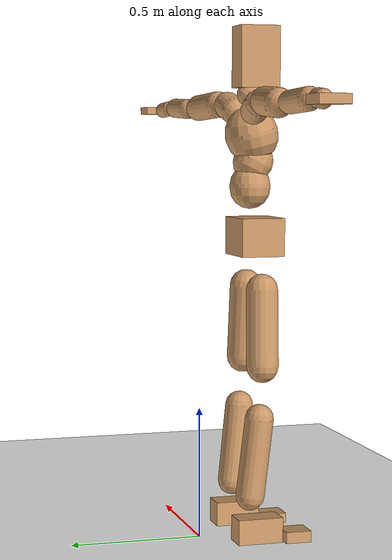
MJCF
<mujoco model="humanoid">
  <option integrator="implicitfast" />

  <visual>
    <global offwidth="1280" offheight="960" />
    <headlight active="1" ambient="0.34 0.34 0.34" diffuse="0.5 0.5 0.5" />
  </visual>

  <default>
    <joint damping="2" stiffness="2" armature="0.01" limited="true" solimplimit="0 .99 .01" />
    <geom condim="1" friction="0.7 0.005 0.0001" solimp=".99 .99 .003" solref="0.015 1" margin="0.001" rgba="0.8 0.6 .4 1" />
    <default class="smplcontact">
      <geom condim="3" friction="1. 0.005 0.0001" solref="0.015 1" solimp="0.98 0.98 0.001" priority="1" />
    </default>
    <default class="stiff_medium">
      <joint stiffness="10" />
    </default>
    <default class="stiff_medium_higher">
      <joint stiffness="50" />
    </default>
    <default class="stiff_high">
      <joint stiffness="100" />
    </default>
  </default>

  <asset>
    <texture type="skybox" builtin="gradient" rgb1="0.99 0.99 0.99" rgb2="0.608 0.828 0.892" width="100" />
    <texture builtin="flat" height="1278" mark="cross" markrgb="1 1 1" name="texgeom" random="0.01" rgb1="0.8 0.6 0.4" rgb2="0.8 0.6 0.4" type="cube" width="127" />
    <texture name="texplane" type="2d" builtin="checker" markrgb="1 1 1" rgb1="0.756 0.772 0.76" rgb2="0.6 0.6 0.6" width="100" height="100" />
    <material name="MatPlane" reflectance="0.5" texture="texplane" texrepeat="1 1" texuniform="true" />
    <material name="geom" texture="texgeom" texuniform="true" />
  </asset>

  <worldbody>
    <light name="tracking_light" pos="0 0 7" dir="0 0 -1" directional="true" cutoff="100" exponent="1" diffuse="1 1 1" specular="0.1 0.1 0.1" mode="trackcom" />
    <camera name="back" pos="0 3 2.4" xyaxes="-1 0 0 0 -1 2" mode="trackcom" />
    <camera name="side" pos="-3 0 2.4" xyaxes="0 -1 0 1 0 2" mode="trackcom" />
    <camera name="front_side" pos="-2.8 -2.8 0.8" xyaxes="0.5 -0.5 0 0.1 0.1 1" mode="trackcom" />
    <geom condim="3" name="floor" pos="0 0 0" rgba="1 1 1 1" size="100 100 .2" type="plane" material="MatPlane" />
    <body name="Pelvis" pos="-0.0018 -0.2233 1.16548" euler="90 0 0">
      <site name="Pelvis" size="0.01" />
      <freejoint name="Pelvis" />
      <geom type="box" pos="-0.0000 -0.0121 -0.0055" size="0.1069 0.0722 0.083" quat="1.0000 0.0000 0.0000 0.0000" density="3165.830099" name="Pelvis" />
      <body name="L_Hip" pos="0.086875 -0.11425 -0.0085">
        <joint name="L_Hip_x" type="hinge" pos="0 0 0" axis="1 0 0" stiffness="14.589841836734694" range="-160.0 22.92" class="stiff_medium" damping="24.10689143795971" armature="0.017703099984976"/>
        <joint name="L_Hip_y" type="hinge" pos="0 0 0" axis="0 1 0" stiffness="14.527612551020406" range="-70.0 70.0" class="stiff_medium" damping="14.262213477061746" armature="0.01400166287137072"/>
        <joint name="L_Hip_z" type="hinge" pos="0 0 0" axis="0 0 1" stiffness="14.532940204081633" range="-28.65 90.0" class="stiff_medium" damping="16.042326803653772" armature="0.01770847782081624"/>
        <geom type="capsule" density="2040.816327" fromto="0.008625 -0.09375 -0.001125 0.03425 -0.37525 -0.0045" size="0.0615" name="L_Hip" />
        <body name="L_Knee" pos="0.042875 -0.469 -0.005625">
          <joint name="L_Knee_x" type="hinge" pos="0 0 0" axis="1 0 0" range="-5.16 171.89" damping="12.427866473289077" armature="0.01695568739341872" stiffness="2.8466087346938775"/>
          <joint name="L_Knee_y" type="hinge" pos="0 0 0" axis="0 1 0" range="-4.58 6.88" damping="11.13194859971676" armature="0.013404538190087162" stiffness="2.888953489795919"/>
          <joint name="L_Knee_z" type="hinge" pos="0 0 0" axis="0 0 1" range="-6.88 4.58" damping="12.3960323573142" armature="0.01698035549968795" stiffness="2.8279299387755104"/>
          <geom type="capsule" density="1234.567901" fromto="-0.003375 -0.0995 -0.010875 -0.013625 -0.398 -0.04375" size="0.0541" name="L_Knee" />
          <body name="L_Ankle" pos="-0.017 -0.4975 -0.054625">
            <joint name="L_Ankle_x" type="hinge" pos="0 0 0" axis="1 0 0" range="-45.84 45.84" class="stiff_medium" damping="7.851672460897958" armature="0.013699724540716312" stiffness="12.5"/>
            <joint name="L_Ankle_y" type="hinge" pos="0 0 0" axis="0 1 0" range="-74.48 22.92" class="stiff_medium" damping="3.90606547180543" armature="0.01356208664002718" stiffness="12.5"/>
            <joint name="L_Ankle_z" type="hinge" pos="0 0 0" axis="0 0 1" range="-4.58 4.58" class="stiff_medium" damping="7.5481535386493945" armature="0.012661027076227863" stiffness="12.5"/>
            <geom type="box" pos="0.029125 -0.029875 0.03025" size="0.0483 0.0464 0.085" quat="1.0000 0.0000 0.0000 0.0000" density="449.071558" name="L_Ankle" class="smplcontact" />
            <body name="L_Toe" pos="0.033 -0.06975 0.149125">
              <joint name="L_Toe_x" type="hinge" pos="0 0 0" axis="1 0 0" range="-91.67 22.92" armature="0.01213855700177954" damping="2.4635905708720696" stiffness="2.5"/>
              <joint name="L_Toe_y" type="hinge" pos="0 0 0" axis="0 1 0" range="-4.58 4.58" armature="0.01150678605468802" damping="2.3986231524239083" stiffness="2.5"/>
              <joint name="L_Toe_z" type="hinge" pos="0 0 0" axis="0 0 1" range="-4.58 4.58" armature="0.010229379204576998" damping="2.261567952171347" stiffness="2.5"/>
              <geom type="box" pos="-0.00375 0.006875 0.031" size="0.0478 0.02 0.0496" quat="1.0000 0.0000 0.0000 0.0000" density="423.206892" name="L_Toe" class="smplcontact" />
            </body>
          </body>
        </body>
      </body>
      <body name="R_Hip" pos="-0.084625 -0.113125 -0.005375">
        <joint name="R_Hip_x" type="hinge" pos="0 0 0" axis="1 0 0" stiffness="14.589841836734694" range="-160.0 22.92" class="stiff_medium" damping="24.10689143795971" armature="0.017703099984976"/>
        <joint name="R_Hip_y" type="hinge" pos="0 0 0" axis="0 1 0" stiffness="14.527612551020406" range="-70.0 70.0" class="stiff_medium" damping="14.262213477061746" armature="0.01400166287137072"/>
        <joint name="R_Hip_z" type="hinge" pos="0 0 0" axis="0 0 1" stiffness="14.532940204081633" range="-90.0 28.65" class="stiff_medium" damping="16.042326803653772" armature="0.01770847782081624"/>
        <geom type="capsule" density="2040.816327" fromto="-0.009625 -0.095625 -0.00225 -0.03825 -0.382625 -0.008875" size="0.0606" name="R_Hip" />
        <body name="R_Knee" pos="-0.047875 -0.47825 -0.011125">
          <joint name="R_Knee_x" type="hinge" pos="0 0 0" axis="1 0 0" range="-5.16 171.89" damping="12.427866473289077" armature="0.01695568739341872" stiffness="2.8466087346938775"/>
          <joint name="R_Knee_y" type="hinge" pos="0 0 0" axis="0 1 0" range="-6.88 4.58" damping="11.13194859971676" armature="0.013404538190087162" stiffness="2.888953489795919"/>
          <joint name="R_Knee_z" type="hinge" pos="0 0 0" axis="0 0 1" range="-4.58 6.88" damping="12.3960323573142" armature="0.01698035549968795" stiffness="2.8279299387755104"/>
          <geom type="capsule" density="1234.567901" fromto="0.004 -0.099625 -0.010625 0.01575 -0.398375 -0.04225" size="0.0541" name="R_Knee" />
          <body name="R_Ankle" pos="0.01975 -0.498 -0.052875">
            <joint name="R_Ankle_x" type="hinge" pos="0 0 0" axis="1 0 0" range="-45.84 45.84" class="stiff_medium" damping="7.851672460897958" armature="0.013699724540716312" stiffness="12.5"/>
            <joint name="R_Ankle_y" type="hinge" pos="0 0 0" axis="0 1 0" range="-22.92 74.48" class="stiff_medium" damping="3.90606547180543" armature="0.01356208664002718" stiffness="12.5"/>
            <joint name="R_Ankle_z" type="hinge" pos="0 0 0" axis="0 0 1" range="-4.58 4.58" class="stiff_medium" damping="7.5481535386493945" armature="0.012661027076227863" stiffness="12.5"/>
            <geom type="box" pos="-0.0265 -0.02175 0.032" size="0.0483 0.0478 0.0865" quat="1.0000 0.0000 0.0000 0.0000" density="434.700981" name="R_Ankle" class="smplcontact" />
            <body name="R_Toe" pos="-0.03175 -0.060125 0.154125">
              <joint name="R_Toe_x" type="hinge" pos="0 0 0" axis="1 0 0" range="-91.67 22.92" armature="0.01213855700177954" damping="2.4635905708720696" stiffness="2.5"/>
              <joint name="R_Toe_y" type="hinge" pos="0 0 0" axis="0 1 0" range="-4.58 4.58" armature="0.01150678605468802" damping="2.3986231524239083" stiffness="2.5"/>
              <joint name="R_Toe_z" type="hinge" pos="0 0 0" axis="0 0 1" range="-4.58 4.58" armature="0.010229379204576998" damping="2.261567952171347" stiffness="2.5"/>
              <geom type="box" pos="0.00525 0.005625 0.028375" size="0.0479 0.0216 0.0493" quat="1.0000 0.0000 0.0000 0.0000" density="407.384095" name="R_Toe" class="smplcontact" />
            </body>
          </body>
        </body>
      </body>
      <body name="Torso" pos="-0.0025 0.109 -0.0267">
        <joint name="Torso_x" type="hinge" pos="0 0 0" axis="1 0 0" range="-25.78 57.3" class="stiff_medium" damping="16.94478917737132" armature="0.011576079564418827" stiffness="11.023723673469387"/>
        <joint name="Torso_y" type="hinge" pos="0 0 0" axis="0 1 0" range="-57.3 57.3" class="stiff_high" damping="29.115087567135376" armature="0.01937626790595332" stiffness="109.37198124999998"/>
        <joint name="Torso_z" type="hinge" pos="0 0 0" axis="0 0 1" range="-34.38 34.38" class="stiff_high" damping="24.64077151532871" armature="0.014228244849331766" stiffness="106.68350652173912"/>
        <geom type="capsule" density="2040.816327" fromto="0.0025 0.0608 0.0005 0.003 0.0743 0.0006" size="0.0769" name="Torso" />
        <body name="Spine" pos="0.0055 0.1352 0.0011">
          <joint name="Spine_x" type="hinge" pos="0 0 0" axis="1 0 0" stiffness="11.23382224489796" range="-25.78 57.3" class="stiff_medium" damping="17.41106230963078" armature="0.011993349058515351"/>
          <joint name="Spine_y" type="hinge" pos="0 0 0" axis="0 1 0" stiffness="11.67224088888889" range="-57.3 57.3" class="stiff_high" damping="12.051053820080998" armature="0.019440876268553408"/>
          <joint name="Spine_z" type="hinge" pos="0 0 0" axis="0 0 1" stiffness="22.9563125" range="-34.38 34.38" class="stiff_high" damping="16.317554444807215" armature="0.016109257231005366"/>
          <geom type="capsule" density="2040.816327" fromto="0.0007 0.0238 0.0114 0.0008 0.0291 0.014" size="0.0755" name="Spine" />
          <body name="Chest" pos="0.0015 0.0529 0.0254">
            <joint name="Chest_x" type="hinge" pos="0 0 0" axis="1 0 0" stiffness="11.776115531914895" range="-25.78 57.3" class="stiff_medium" damping="18.021102303759758" armature="0.012256829035287782"/>
            <joint name="Chest_y" type="hinge" pos="0 0 0" axis="0 1 0" stiffness="13.448267333333334" range="-57.3 57.3" class="stiff_high" damping="12.937740431789006" armature="0.01944780358729065"/>
            <joint name="Chest_z" type="hinge" pos="0 0 0" axis="0 0 1" stiffness="23.267014782608697" range="-34.38 34.38" class="stiff_high" damping="16.84752883262496" armature="0.01694334891512797"/>
            <geom type="capsule" density="2040.816327" fromto="-0.0009 0.0682 -0.0173 -0.001 0.0833 -0.0212" size="0.1002" name="Chest" />
            <body name="Neck" pos="-0.0028 0.2139 -0.0429">
              <joint name="Neck_x" type="hinge" pos="0 0 0" axis="1 0 0" range="-28.65 57.3" class="stiff_medium_higher" damping="9.999999999999996" armature="0.009999999999999993" stiffness="50.0"/>
              <joint name="Neck_y" type="hinge" pos="0 0 0" axis="0 1 0" range="-40.11 40.11" class="stiff_medium_higher" damping="10.0" armature="0.01" stiffness="50.0"/>
              <joint name="Neck_z" type="hinge" pos="0 0 0" axis="0 0 1" range="-40.11 40.11" class="stiff_medium_higher" damping="9.999999999999995" armature="0.00999999999999999" stiffness="50.0"/>
              <geom type="capsule" density="1000" fromto="0.001 0.013 0.0103 0.0041 0.052 0.0411" size="0.0436" name="Neck" />
              <body name="Head" pos="0.0052 0.065 0.0513">
                <joint name="Head_x" type="hinge" pos="0 0 0" axis="1 0 0" range="-28.65 57.3" class="stiff_medium_higher" damping="1.9999999999999973" armature="0.009999999999999974" stiffness="50.0"/>
                <joint name="Head_y" type="hinge" pos="0 0 0" axis="0 1 0" range="-40.11 40.11" class="stiff_medium_higher" damping="1.9999999999999998" armature="0.009999999999999998" stiffness="50.0"/>
                <joint name="Head_z" type="hinge" pos="0 0 0" axis="0 0 1" range="-40.11 40.11" class="stiff_medium_higher" damping="1.999999999999994" armature="0.00999999999999994" stiffness="50.0"/>
                <geom type="box" pos="-0.0042 0.0876 -0.0116" size="0.0606 0.1154 0.076" quat="1.0000 0.0000 0.0000 0.0000" density="1018.069894" name="Head" />
                <geom type="capsule" name="nose" size="0.02 0.01" pos="0 0.07 0.05" quat="1 0 0 0" mass="0" contype="0" conaffinity="0" />
              </body>
            </body>
            <body name="L_Thorax" pos="0.10244 0.15821 -0.04433">
              <joint name="L_Thorax_x" type="hinge" pos="0 0 0" axis="1 0 0" range="-10.89 4.58" class="stiff_medium_higher" damping="31.58973579795799" armature="0.016223873504270445" stiffness="76.88603214285715"/>
              <joint name="L_Thorax_y" type="hinge" pos="0 0 0" axis="0 1 0" range="-28.65 17.19" class="stiff_medium_higher" damping="34.89989559971406" armature="0.01967496307175568" stiffness="77.38278265306123"/>
              <joint name="L_Thorax_z" type="hinge" pos="0 0 0" axis="0 0 1" range="-31.51 40.11" class="stiff_medium_higher" damping="34.901462278801546" armature="0.019678125977203684" stiffness="77.37729132653061"/>
              <geom type="capsule" density="1000" fromto="0.02366 0.00793 -0.00234 0.09464 0.03172 -0.00923" size="0.0521" name="L_Thorax" />
              <body name="L_Shoulder" pos="0.1183 0.03965 -0.01157">
                <joint name="L_Shoulder_x" type="hinge" pos="0 0 0" axis="1 0 0" range="-97.4 97.4" class="stiff_medium" damping="9.029989056678968" armature="0.014800063709013931" stiffness="15.304120000000001"/>
                <joint name="L_Shoulder_y" type="hinge" pos="0 0 0" axis="0 1 0" range="-108.86 80.21" class="stiff_medium" damping="10.416659800941959" armature="0.019521721968520908" stiffness="15.439610408163267"/>
                <joint name="L_Shoulder_z" type="hinge" pos="0 0 0" axis="0 0 1" range="-97.4 85.94" class="stiff_medium" damping="10.414978319288075" armature="0.019525527681653103" stiffness="15.431617857142857"/>
                <geom type="capsule" density="1000" fromto="0.06747 -0.00338 -0.00715 0.27001 -0.01326 -0.0286" size="0.0517" name="L_Shoulder" />
                <body name="L_Elbow" pos="0.33748 -0.01664 -0.03575">
                  <joint name="L_Elbow_x" type="hinge" pos="0 0 0" axis="1 0 0" range="-17.19 4.58" damping="6.893935965131491" armature="0.012655354053031607" stiffness="3.0043475918367353"/>
                  <joint name="L_Elbow_y" type="hinge" pos="0 0 0" axis="0 1 0" range="-180.0 17.19" damping="8.400044856786575" armature="0.0187809014242655" stiffness="3.005638632653061"/>
                  <joint name="L_Elbow_z" type="hinge" pos="0 0 0" axis="0 0 1" range="-100.84 4.58" damping="8.401427491655667" armature="0.018800821954664846" stiffness="3.003442469387755"/>
                  <geom type="capsule" density="1000" fromto="0.06474 0.00234 -0.00026 0.25922 0.00936 -0.00117" size="0.0405" name="L_Elbow" />
                  <body name="L_Wrist" pos="0.32396 0.0117 -0.00156">
                    <joint name="L_Wrist_x" type="hinge" pos="0 0 0" axis="1 0 0" range="-180.0 22.92" armature="0.012290327941728197" damping="2.595783394027916" stiffness="2.7412171020408165"/>
                    <joint name="L_Wrist_y" type="hinge" pos="0 0 0" axis="0 1 0" range="-17.19 17.19" armature="0.01653060809261125" damping="3.021806412761206" stiffness="2.7619413469387752"/>
                    <joint name="L_Wrist_z" type="hinge" pos="0 0 0" axis="0 0 1" range="-22.92 22.92" armature="0.016761001490565784" damping="3.0381836187287616" stiffness="2.7535823877551024"/>
                    <geom type="capsule" density="1000" fromto="0.02184 -0.00208 -0.0039 0.08736 -0.00845 -0.0156" size="0.0318" name="L_Wrist" class="smplcontact" />
                    <body name="L_Hand" pos="0.1092 -0.01066 -0.01937">
                      <joint name="L_Hand_x" type="hinge" pos="0 0 0" axis="1 0 0" range="-17.19 17.19" armature="0.01030060650759153" damping="2.3143714878877146" stiffness="2.5999999999999996"/>
                      <joint name="L_Hand_y" type="hinge" pos="0 0 0" axis="0 1 0" range="-51.57 51.57" armature="0.01363542097808933" damping="2.6627840521917" stiffness="2.5999999999999996"/>
                      <joint name="L_Hand_z" type="hinge" pos="0 0 0" axis="0 0 1" range="-91.67 91.67" armature="0.014524361339041461" damping="2.7482117633656906" stiffness="2.5999999999999996"/>
                      <geom type="box" pos="0.06409 0.0013 -0.00754" size="0.0585 0.0158 0.0538" quat="1.0000 0.0000 0.0000 0.0000" density="400.552564" name="L_Hand" class="smplcontact" />
                    </body>
                  </body>
                </body>
              </body>
            </body>
            <body name="R_Thorax" pos="-0.10634 0.15444 -0.05018">
              <joint name="R_Thorax_x" type="hinge" pos="0 0 0" axis="1 0 0" range="-10.89 4.58" class="stiff_medium_higher" damping="31.58973579795799" armature="0.016223873504270445" stiffness="76.88603214285715"/>
              <joint name="R_Thorax_y" type="hinge" pos="0 0 0" axis="0 1 0" range="-17.19 28.65" class="stiff_medium_higher" damping="34.89989559971406" armature="0.01967496307175568" stiffness="77.38278265306123"/>
              <joint name="R_Thorax_z" type="hinge" pos="0 0 0" axis="0 0 1" range="-40.11 31.51" class="stiff_medium_higher" damping="34.901462278801546" armature="0.019678125977203684" stiffness="77.37729132653061"/>
              <geom type="capsule" density="1000" fromto="-0.02496 0.00845 -0.00234 -0.09984 0.0338 -0.00949" size="0.0511" name="R_Thorax" />
              <body name="R_Shoulder" pos="-0.1248 0.04238 -0.01183">
                <joint name="R_Shoulder_x" type="hinge" pos="0 0 0" axis="1 0 0" range="-97.4 97.4" class="stiff_medium" damping="9.029989056678968" armature="0.014800063709013931" stiffness="15.304120000000001"/>
                <joint name="R_Shoulder_y" type="hinge" pos="0 0 0" axis="0 1 0" range="-80.21 108.86" class="stiff_medium" damping="10.416659800941959" armature="0.019521721968520908" stiffness="15.439610408163267"/>
                <joint name="R_Shoulder_z" type="hinge" pos="0 0 0" axis="0 0 1" range="-85.94 97.4" class="stiff_medium" damping="10.414978319288075" armature="0.019525527681653103" stiffness="15.431617857142857"/>
                <geom type="capsule" density="1000" fromto="-0.06591 -0.00351 -0.00559 -0.2639 -0.01391 -0.02223" size="0.0531" name="R_Shoulder" />
                <body name="R_Elbow" pos="-0.32981 -0.01729 -0.02782">
                  <joint name="R_Elbow_x" type="hinge" pos="0 0 0" axis="1 0 0" range="-17.19 4.58" damping="6.893935965131491" armature="0.012655354053031607" stiffness="3.0043475918367353"/>
                  <joint name="R_Elbow_y" type="hinge" pos="0 0 0" axis="0 1 0" range="-17.19 180.0" damping="8.400044856786575" armature="0.0187809014242655" stiffness="3.005638632653061"/>
                  <joint name="R_Elbow_z" type="hinge" pos="0 0 0" axis="0 0 1" range="-4.58 100.84" damping="8.401427491655667" armature="0.018800821954664846" stiffness="3.003442469387755"/>
                  <geom type="capsule" density="1000" fromto="-0.06643 0.00208 -0.00143 -0.26546 0.00806 -0.00572" size="0.0408" name="R_Elbow" />
                  <body name="R_Wrist" pos="-0.33189 0.01014 -0.00728">
                    <joint name="R_Wrist_x" type="hinge" pos="0 0 0" axis="1 0 0" range="-180.0 22.92" armature="0.012290327941728197" damping="2.595783394027916" stiffness="2.7412171020408165"/>
                    <joint name="R_Wrist_y" type="hinge" pos="0 0 0" axis="0 1 0" range="-17.19 17.19" armature="0.01653060809261125" damping="3.021806412761206" stiffness="2.7619413469387752"/>
                    <joint name="R_Wrist_z" type="hinge" pos="0 0 0" axis="0 0 1" range="-22.92 22.92" armature="0.016761001490565784" damping="3.0381836187287616" stiffness="2.7535823877551024"/>
                    <geom type="capsule" density="1000" fromto="-0.02197 -0.00156 -0.00273 -0.08801 -0.00637 -0.01079" size="0.0326" name="R_Wrist" class="smplcontact" />
                    <body name="R_Hand" pos="-0.10998 -0.00793 -0.01339">
                      <joint name="R_Hand_x" type="hinge" pos="0 0 0" axis="1 0 0" range="-17.19 17.19" armature="0.01030060650759153" damping="2.3143714878877146" stiffness="2.5999999999999996"/>
                      <joint name="R_Hand_y" type="hinge" pos="0 0 0" axis="0 1 0" range="-51.57 51.57" armature="0.01363542097808933" damping="2.6627840521917" stiffness="2.5999999999999996"/>
                      <joint name="R_Hand_z" type="hinge" pos="0 0 0" axis="0 0 1" range="-91.67 91.67" armature="0.014524361339041461" damping="2.7482117633656906" stiffness="2.5999999999999996"/>
                      <geom type="box" pos="-0.06006 -0.00117 -0.01027" size="0.0569 0.0164 0.0546" quat="1.0000 0.0000 0.0000 0.0000" density="403.679611" name="R_Hand" class="smplcontact" />
                    </body>
                  </body>
                </body>
              </body>
            </body>
          </body>
        </body>
      </body>
    </body>
  </worldbody>
  <actuator>
    <general name="L_Hip_x" joint="L_Hip_x" biastype="affine" gainprm="419.21001901187765" biasprm="-314.15541988928595 -262.6171530612245 -3.2142521917279616" ctrllimited="true" ctrlrange="-1 1" forcerange="-525.234306122449 525.234306122449" />
    <general name="L_Hip_y" joint="L_Hip_y" biastype="affine" gainprm="319.47888605139207" biasprm="0.0 -261.4970259183673 -2.852442695412349" ctrllimited="true" ctrlrange="-1 1" forcerange="-522.9940518367346 522.9940518367346" />
    <general name="L_Hip_z" joint="L_Hip_z" biastype="affine" gainprm="270.857650054052" biasprm="140.0515535677715 -261.5929236734694 -3.2084653607307545" ctrllimited="true" ctrlrange="-1 1" forcerange="-523.1858473469388 523.1858473469388" />
    <general name="L_Knee_x" joint="L_Knee_x" biastype="affine" gainprm="395.8344512323349" biasprm="372.7618077038531 -256.194786122449 -3.1069666183222693" ctrllimited="true" ctrlrange="-1 1" forcerange="-512.389572244898 512.389572244898" />
    <general name="L_Knee_y" joint="L_Knee_y" biastype="affine" gainprm="26.002496647202126" biasprm="5.218651159560636 -260.0058140816327 -2.78298714992919" ctrllimited="true" ctrlrange="-1 1" forcerange="-520.0116281632654 520.0116281632654" />
    <general name="L_Knee_z" joint="L_Knee_z" biastype="affine" gainprm="25.45324423230062" biasprm="-5.108417254301171 -254.51369448979594 -3.09900808932855" ctrllimited="true" ctrlrange="-1 1" forcerange="-509.0273889795919 509.0273889795919" />
    <general name="L_Ankle_x" joint="L_Ankle_x" biastype="affine" gainprm="90.00662952534759" biasprm="0.0 -112.5 -2.6172241536326526" ctrllimited="true" ctrlrange="-1 1" forcerange="-225.0 225.0" />
    <general name="L_Ankle_y" joint="L_Ankle_y" biastype="affine" gainprm="95.62222639363935" biasprm="-50.61891163096555 -112.5 -2.6040436478702866" ctrllimited="true" ctrlrange="-1 1" forcerange="-225.0 225.0" />
    <general name="L_Ankle_z" joint="L_Ankle_z" biastype="affine" gainprm="8.992808970900782" biasprm="0.0 -112.5 -2.516051179549798" ctrllimited="true" ctrlrange="-1 1" forcerange="-225.0 225.0" />
    <general name="L_Toe_x" joint="L_Toe_x" biastype="affine" gainprm="89.99877554371359" biasprm="-53.996123733574564 -90.0 -0.9854362283488278" ctrllimited="true" ctrlrange="-1 1" forcerange="-180.0 180.0" />
    <general name="L_Toe_y" joint="L_Toe_y" biastype="affine" gainprm="7.194247176720626" biasprm="0.0 -90.0 -0.9594492609695634" ctrllimited="true" ctrlrange="-1 1" forcerange="-180.0 180.0" />
    <general name="L_Toe_z" joint="L_Toe_z" biastype="affine" gainprm="7.194247176720626" biasprm="0.0 -90.0 -0.9046271808685389" ctrllimited="true" ctrlrange="-1 1" forcerange="-180.0 180.0" />
    <general name="R_Hip_x" joint="R_Hip_x" biastype="affine" gainprm="419.21001901187765" biasprm="-314.15541988928595 -262.6171530612245 -3.2142521917279616" ctrllimited="true" ctrlrange="-1 1" forcerange="-525.234306122449 525.234306122449" />
    <general name="R_Hip_y" joint="R_Hip_y" biastype="affine" gainprm="319.47888605139207" biasprm="0.0 -261.4970259183673 -2.852442695412349" ctrllimited="true" ctrlrange="-1 1" forcerange="-522.9940518367346 522.9940518367346" />
    <general name="R_Hip_z" joint="R_Hip_z" biastype="affine" gainprm="270.857650054052" biasprm="-140.0515535677715 -261.5929236734694 -3.2084653607307545" ctrllimited="true" ctrlrange="-1 1" forcerange="-523.1858473469388 523.1858473469388" />
    <general name="R_Knee_x" joint="R_Knee_x" biastype="affine" gainprm="395.8344512323349" biasprm="372.7618077038531 -256.194786122449 -3.1069666183222693" ctrllimited="true" ctrlrange="-1 1" forcerange="-512.389572244898 512.389572244898" />
    <general name="R_Knee_y" joint="R_Knee_y" biastype="affine" gainprm="26.002496647202126" biasprm="-5.218651159560636 -260.0058140816327 -2.78298714992919" ctrllimited="true" ctrlrange="-1 1" forcerange="-520.0116281632654 520.0116281632654" />
    <general name="R_Knee_z" joint="R_Knee_z" biastype="affine" gainprm="25.45324423230062" biasprm="5.108417254301171 -254.51369448979594 -3.09900808932855" ctrllimited="true" ctrlrange="-1 1" forcerange="-509.0273889795919 509.0273889795919" />
    <general name="R_Ankle_x" joint="R_Ankle_x" biastype="affine" gainprm="90.00662952534759" biasprm="0.0 -112.5 -2.6172241536326526" ctrllimited="true" ctrlrange="-1 1" forcerange="-225.0 225.0" />
    <general name="R_Ankle_y" joint="R_Ankle_y" biastype="affine" gainprm="95.62222639363935" biasprm="50.61891163096555 -112.5 -2.6040436478702866" ctrllimited="true" ctrlrange="-1 1" forcerange="-225.0 225.0" />
    <general name="R_Ankle_z" joint="R_Ankle_z" biastype="affine" gainprm="8.992808970900782" biasprm="0.0 -112.5 -2.516051179549798" ctrllimited="true" ctrlrange="-1 1" forcerange="-225.0 225.0" />
    <general name="R_Toe_x" joint="R_Toe_x" biastype="affine" gainprm="89.99877554371359" biasprm="-53.996123733574564 -90.0 -0.9854362283488278" ctrllimited="true" ctrlrange="-1 1" forcerange="-180.0 180.0" />
    <general name="R_Toe_y" joint="R_Toe_y" biastype="affine" gainprm="7.194247176720626" biasprm="0.0 -90.0 -0.9594492609695634" ctrllimited="true" ctrlrange="-1 1" forcerange="-180.0 180.0" />
    <general name="R_Toe_z" joint="R_Toe_z" biastype="affine" gainprm="7.194247176720626" biasprm="0.0 -90.0 -0.9046271808685389" ctrllimited="true" ctrlrange="-1 1" forcerange="-180.0 180.0" />
    <general name="Torso_x" joint="Torso_x" biastype="affine" gainprm="191.81537709933156" biasprm="72.77347961207185 -264.5693681632653 -4.518610447299019" ctrllimited="true" ctrlrange="-1 1" forcerange="-396.85405224489796 396.85405224489796" />
    <general name="Torso_y" joint="Torso_y" biastype="affine" gainprm="262.51209058192023" biasprm="0.0 -262.492755 -5.823017513427075" ctrllimited="true" ctrlrange="-1 1" forcerange="-393.7391324999999 393.7391324999999" />
    <general name="Torso_z" joint="Torso_z" biastype="affine" gainprm="153.63556556747483" biasprm="0.0 -256.0404156521739 -4.9281543030657415" ctrllimited="true" ctrlrange="-1 1" forcerange="-384.0606234782608 384.0606234782608" />
    <general name="Spine_x" joint="Spine_x" biastype="affine" gainprm="195.47114151254812" biasprm="74.16045234082229 -269.61173387755105 -4.6429499492348745" ctrllimited="true" ctrlrange="-1 1" forcerange="-404.41760081632657 404.41760081632657" />
    <general name="Spine_y" joint="Spine_y" biastype="affine" gainprm="280.1544163778229" biasprm="0.0 -280.13378133333333 -6.025526910040499" ctrllimited="true" ctrlrange="-1 1" forcerange="-420.200672 420.200672" />
    <general name="Spine_z" joint="Spine_z" biastype="affine" gainprm="165.29762515644848" biasprm="0.0 -275.47575 -5.439184814935738" ctrllimited="true" ctrlrange="-1 1" forcerange="-413.213625 413.213625" />
    <general name="Chest_x" joint="Chest_x" biastype="affine" gainprm="204.90717188021173" biasprm="77.74041956745634 -282.62677276595747 -4.805627281002602" ctrllimited="true" ctrlrange="-1 1" forcerange="-423.94015914893623 423.94015914893623" />
    <general name="Chest_y" joint="Chest_y" biastype="affine" gainprm="322.78219083444463" biasprm="0.0 -322.758416 -6.468870215894503" ctrllimited="true" ctrlrange="-1 1" forcerange="-484.1376240000001 484.1376240000001" />
    <general name="Chest_z" joint="Chest_z" biastype="affine" gainprm="167.53484637592376" biasprm="0.0 -279.20417739130437 -5.615842944208319" ctrllimited="true" ctrlrange="-1 1" forcerange="-418.8062660869566 418.8062660869566" />
    <general name="Neck_x" joint="Neck_x" biastype="affine" gainprm="27.00198885760427" biasprm="9.000662952534757 -36.0 -0.7999999999999997" ctrllimited="true" ctrlrange="-1 1" forcerange="-72.0 72.0" />
    <general name="Neck_y" joint="Neck_y" biastype="affine" gainprm="25.20185626709732" biasprm="0.0 -36.0 -0.8" ctrllimited="true" ctrlrange="-1 1" forcerange="-72.0 72.0" />
    <general name="Neck_z" joint="Neck_z" biastype="affine" gainprm="25.20185626709732" biasprm="0.0 -36.0 -0.7999999999999996" ctrllimited="true" ctrlrange="-1 1" forcerange="-72.0 72.0" />
    <general name="Head_x" joint="Head_x" biastype="affine" gainprm="18.001325905069514" biasprm="6.000441968356505 -24.0 -0.7999999999999989" ctrllimited="true" ctrlrange="-1 1" forcerange="-48.0 48.0" />
    <general name="Head_y" joint="Head_y" biastype="affine" gainprm="16.801237511398213" biasprm="0.0 -24.0 -0.7999999999999999" ctrllimited="true" ctrlrange="-1 1" forcerange="-48.0 48.0" />
    <general name="Head_z" joint="Head_z" biastype="affine" gainprm="16.801237511398213" biasprm="0.0 -24.0 -0.7999999999999976" ctrllimited="true" ctrlrange="-1 1" forcerange="-48.0 48.0" />
    <general name="L_Thorax_x" joint="L_Thorax_x" biastype="affine" gainprm="24.911299101430362" biasprm="-10.160975910150333 -184.52647714285715 -2.5271788638366393" ctrllimited="true" ctrlrange="-1 1" forcerange="-369.0529542857143 369.0529542857143" />
    <general name="L_Thorax_y" joint="L_Thorax_y" biastype="affine" gainprm="74.29294346554212" biasprm="-18.57323586638553 -185.71867836734694 -2.7919916479771247" ctrllimited="true" ctrlrange="-1 1" forcerange="-371.4373567346939 371.4373567346939" />
    <general name="L_Thorax_z" joint="L_Thorax_z" biastype="affine" gainprm="116.06638363736599" biasprm="13.937041319203399 -185.70549918367348 -2.7921169823041243" ctrllimited="true" ctrlrange="-1 1" forcerange="-371.41099836734696 371.41099836734696" />
    <general name="L_Shoulder_x" joint="L_Shoulder_x" biastype="affine" gainprm="124.8779970044095" biasprm="0.0 -73.459776 -2.4079970817810583" ctrllimited="true" ctrlrange="-1 1" forcerange="-146.919552 146.919552" />
    <general name="L_Shoulder_y" joint="L_Shoulder_y" biastype="affine" gainprm="122.27778721627745" biasprm="-18.528897253643354 -74.11012995918368 -2.7777759469178562" ctrllimited="true" ctrlrange="-1 1" forcerange="-148.22025991836736 148.22025991836736" />
    <general name="L_Shoulder_z" joint="L_Shoulder_z" biastype="affine" gainprm="118.51062714799397" biasprm="-7.40772219437119 -74.0717657142857 -2.7773275518101537" ctrllimited="true" ctrlrange="-1 1" forcerange="-148.1435314285714 148.1435314285714" />
    <general name="L_Elbow_x" joint="L_Elbow_x" biastype="affine" gainprm="20.54747587592092" biasprm="-11.901868203737386 -108.15651330612246 -1.1030297544210386" ctrllimited="true" ctrlrange="-1 1" forcerange="-216.31302661224493 216.31302661224493" />
    <general name="L_Elbow_y" joint="L_Elbow_y" biastype="affine" gainprm="186.19650463217005" biasprm="-153.73321628461693 -108.20299077551019 -1.3440071770858522" ctrllimited="true" ctrlrange="-1 1" forcerange="-216.40598155102037 216.40598155102037" />
    <general name="L_Elbow_z" joint="L_Elbow_z" biastype="affine" gainprm="99.4700192692226" biasprm="-90.82701626688834 -108.12392889795919 -1.3442283986649066" ctrllimited="true" ctrlrange="-1 1" forcerange="-216.24785779591838 216.24785779591838" />
    <general name="L_Wrist_x" joint="L_Wrist_x" biastype="affine" gainprm="29.125065357690858" biasprm="-22.545659700305933 -16.447302612244897 -1.0383133576111665" ctrllimited="true" ctrlrange="-1 1" forcerange="-32.894605224489794 32.894605224489794" />
    <general name="L_Wrist_y" joint="L_Wrist_y" biastype="affine" gainprm="4.971860631693158" biasprm="0.0 -16.571648081632652 -1.2087225651044824" ctrllimited="true" ctrlrange="-1 1" forcerange="-33.143296163265305 33.143296163265305" />
    <general name="L_Wrist_z" joint="L_Wrist_z" biastype="affine" gainprm="6.609084529125214" biasprm="0.0 -16.521494326530615 -1.2152734474915048" ctrllimited="true" ctrlrange="-1 1" forcerange="-33.04298865306123 33.04298865306123" />
    <general name="L_Hand_x" joint="L_Hand_x" biastype="affine" gainprm="4.680344735318074" biasprm="0.0 -15.599999999999998 -0.9257485951550859" ctrllimited="true" ctrlrange="-1 1" forcerange="-31.199999999999996 31.199999999999996" />
    <general name="L_Hand_y" joint="L_Hand_y" biastype="affine" gainprm="14.041034205954219" biasprm="0.0 -15.599999999999998 -1.06511362087668" ctrllimited="true" ctrlrange="-1 1" forcerange="-31.199999999999996 31.199999999999996" />
    <general name="L_Hand_z" joint="L_Hand_z" biastype="affine" gainprm="24.959115874729946" biasprm="0.0 -15.599999999999998 -1.0992847053462762" ctrllimited="true" ctrlrange="-1 1" forcerange="-31.199999999999996 31.199999999999996" />
    <general name="R_Thorax_x" joint="R_Thorax_x" biastype="affine" gainprm="24.911299101430362" biasprm="-10.160975910150333 -184.52647714285715 -2.5271788638366393" ctrllimited="true" ctrlrange="-1 1" forcerange="-369.0529542857143 369.0529542857143" />
    <general name="R_Thorax_y" joint="R_Thorax_y" biastype="affine" gainprm="74.29294346554212" biasprm="18.57323586638552 -185.71867836734694 -2.7919916479771247" ctrllimited="true" ctrlrange="-1 1" forcerange="-371.4373567346939 371.4373567346939" />
    <general name="R_Thorax_z" joint="R_Thorax_z" biastype="affine" gainprm="116.06638363736599" biasprm="-13.937041319203399 -185.70549918367348 -2.7921169823041243" ctrllimited="true" ctrlrange="-1 1" forcerange="-371.41099836734696 371.41099836734696" />
    <general name="R_Shoulder_x" joint="R_Shoulder_x" biastype="affine" gainprm="124.8779970044095" biasprm="0.0 -73.459776 -2.4079970817810583" ctrllimited="true" ctrlrange="-1 1" forcerange="-146.919552 146.919552" />
    <general name="R_Shoulder_y" joint="R_Shoulder_y" biastype="affine" gainprm="122.27778721627745" biasprm="18.528897253643354 -74.11012995918368 -2.7777759469178562" ctrllimited="true" ctrlrange="-1 1" forcerange="-148.22025991836736 148.22025991836736" />
    <general name="R_Shoulder_z" joint="R_Shoulder_z" biastype="affine" gainprm="118.51062714799397" biasprm="7.407722194371173 -74.0717657142857 -2.7773275518101537" ctrllimited="true" ctrlrange="-1 1" forcerange="-148.1435314285714 148.1435314285714" />
    <general name="R_Elbow_x" joint="R_Elbow_x" biastype="affine" gainprm="20.54747587592092" biasprm="-11.901868203737386 -108.15651330612246 -1.1030297544210386" ctrllimited="true" ctrlrange="-1 1" forcerange="-216.31302661224493 216.31302661224493" />
    <general name="R_Elbow_y" joint="R_Elbow_y" biastype="affine" gainprm="186.19650463217005" biasprm="153.73321628461693 -108.20299077551019 -1.3440071770858522" ctrllimited="true" ctrlrange="-1 1" forcerange="-216.40598155102037 216.40598155102037" />
    <general name="R_Elbow_z" joint="R_Elbow_z" biastype="affine" gainprm="99.4700192692226" biasprm="90.82701626688832 -108.12392889795919 -1.3442283986649066" ctrllimited="true" ctrlrange="-1 1" forcerange="-216.24785779591838 216.24785779591838" />
    <general name="R_Wrist_x" joint="R_Wrist_x" biastype="affine" gainprm="29.125065357690858" biasprm="-22.545659700305933 -16.447302612244897 -1.0383133576111665" ctrllimited="true" ctrlrange="-1 1" forcerange="-32.894605224489794 32.894605224489794" />
    <general name="R_Wrist_y" joint="R_Wrist_y" biastype="affine" gainprm="4.971860631693158" biasprm="0.0 -16.571648081632652 -1.2087225651044824" ctrllimited="true" ctrlrange="-1 1" forcerange="-33.143296163265305 33.143296163265305" />
    <general name="R_Wrist_z" joint="R_Wrist_z" biastype="affine" gainprm="6.609084529125214" biasprm="0.0 -16.521494326530615 -1.2152734474915048" ctrllimited="true" ctrlrange="-1 1" forcerange="-33.04298865306123 33.04298865306123" />
    <general name="R_Hand_x" joint="R_Hand_x" biastype="affine" gainprm="4.680344735318074" biasprm="0.0 -15.599999999999998 -0.9257485951550859" ctrllimited="true" ctrlrange="-1 1" forcerange="-31.199999999999996 31.199999999999996" />
    <general name="R_Hand_y" joint="R_Hand_y" biastype="affine" gainprm="14.041034205954219" biasprm="0.0 -15.599999999999998 -1.06511362087668" ctrllimited="true" ctrlrange="-1 1" forcerange="-31.199999999999996 31.199999999999996" />
    <general name="R_Hand_z" joint="R_Hand_z" biastype="affine" gainprm="24.959115874729946" biasprm="0.0 -15.599999999999998 -1.0992847053462762" ctrllimited="true" ctrlrange="-1 1" forcerange="-31.199999999999996 31.199999999999996" />
  </actuator>
  <contact>
    <exclude body1="Torso" body2="Chest" />
    <exclude body1="Head" body2="Chest" />
    <exclude body1="R_Knee" body2="R_Toe" />
    <exclude body1="R_Knee" body2="L_Ankle" />
    <exclude body1="R_Knee" body2="L_Toe" />
    <exclude body1="L_Knee" body2="L_Toe" />
    <exclude body1="L_Knee" body2="R_Ankle" />
    <exclude body1="L_Knee" body2="R_Toe" />
    <exclude body1="L_Shoulder" body2="Chest" />
    <exclude body1="R_Shoulder" body2="Chest" />
  </contact>
  <sensor>
    <framelinvel name="sensor_Pelvis_framelinvel" objtype="xbody" objname="Pelvis" />
    <framelinvel name="sensor_L_Hip_framelinvel" objtype="xbody" objname="L_Hip" />
    <framelinvel name="sensor_L_Knee_framelinvel" objtype="xbody" objname="L_Knee" />
    <framelinvel name="sensor_L_Ankle_framelinvel" objtype="xbody" objname="L_Ankle" />
    <framelinvel name="sensor_L_Toe_framelinvel" objtype="xbody" objname="L_Toe" />
    <framelinvel name="sensor_R_Hip_framelinvel" objtype="xbody" objname="R_Hip" />
    <framelinvel name="sensor_R_Knee_framelinvel" objtype="xbody" objname="R_Knee" />
    <framelinvel name="sensor_R_Ankle_framelinvel" objtype="xbody" objname="R_Ankle" />
    <framelinvel name="sensor_R_Toe_framelinvel" objtype="xbody" objname="R_Toe" />
    <framelinvel name="sensor_Torso_framelinvel" objtype="xbody" objname="Torso" />
    <framelinvel name="sensor_Spine_framelinvel" objtype="xbody" objname="Spine" />
    <framelinvel name="sensor_Chest_framelinvel" objtype="xbody" objname="Chest" />
    <framelinvel name="sensor_Neck_framelinvel" objtype="xbody" objname="Neck" />
    <framelinvel name="sensor_Head_framelinvel" objtype="xbody" objname="Head" />
    <framelinvel name="sensor_L_Thorax_framelinvel" objtype="xbody" objname="L_Thorax" />
    <framelinvel name="sensor_L_Shoulder_framelinvel" objtype="xbody" objname="L_Shoulder" />
    <framelinvel name="sensor_L_Elbow_framelinvel" objtype="xbody" objname="L_Elbow" />
    <framelinvel name="sensor_L_Wrist_framelinvel" objtype="xbody" objname="L_Wrist" />
    <framelinvel name="sensor_L_Hand_framelinvel" objtype="xbody" objname="L_Hand" />
    <framelinvel name="sensor_R_Thorax_framelinvel" objtype="xbody" objname="R_Thorax" />
    <framelinvel name="sensor_R_Shoulder_framelinvel" objtype="xbody" objname="R_Shoulder" />
    <framelinvel name="sensor_R_Elbow_framelinvel" objtype="xbody" objname="R_Elbow" />
    <framelinvel name="sensor_R_Wrist_framelinvel" objtype="xbody" objname="R_Wrist" />
    <framelinvel name="sensor_R_Hand_framelinvel" objtype="xbody" objname="R_Hand" />
    <frameangvel name="sensor_Pelvis_frameangvel" objtype="xbody" objname="Pelvis" />
    <frameangvel name="sensor_L_Hip_frameangvel" objtype="xbody" objname="L_Hip" />
    <frameangvel name="sensor_L_Knee_frameangvel" objtype="xbody" objname="L_Knee" />
    <frameangvel name="sensor_L_Ankle_frameangvel" objtype="xbody" objname="L_Ankle" />
    <frameangvel name="sensor_L_Toe_frameangvel" objtype="xbody" objname="L_Toe" />
    <frameangvel name="sensor_R_Hip_frameangvel" objtype="xbody" objname="R_Hip" />
    <frameangvel name="sensor_R_Knee_frameangvel" objtype="xbody" objname="R_Knee" />
    <frameangvel name="sensor_R_Ankle_frameangvel" objtype="xbody" objname="R_Ankle" />
    <frameangvel name="sensor_R_Toe_frameangvel" objtype="xbody" objname="R_Toe" />
    <frameangvel name="sensor_Torso_frameangvel" objtype="xbody" objname="Torso" />
    <frameangvel name="sensor_Spine_frameangvel" objtype="xbody" objname="Spine" />
    <frameangvel name="sensor_Chest_frameangvel" objtype="xbody" objname="Chest" />
    <frameangvel name="sensor_Neck_frameangvel" objtype="xbody" objname="Neck" />
    <frameangvel name="sensor_Head_frameangvel" objtype="xbody" objname="Head" />
    <frameangvel name="sensor_L_Thorax_frameangvel" objtype="xbody" objname="L_Thorax" />
    <frameangvel name="sensor_L_Shoulder_frameangvel" objtype="xbody" objname="L_Shoulder" />
    <frameangvel name="sensor_L_Elbow_frameangvel" objtype="xbody" objname="L_Elbow" />
    <frameangvel name="sensor_L_Wrist_frameangvel" objtype="xbody" objname="L_Wrist" />
    <frameangvel name="sensor_L_Hand_frameangvel" objtype="xbody" objname="L_Hand" />
    <frameangvel name="sensor_R_Thorax_frameangvel" objtype="xbody" objname="R_Thorax" />
    <frameangvel name="sensor_R_Shoulder_frameangvel" objtype="xbody" objname="R_Shoulder" />
    <frameangvel name="sensor_R_Elbow_frameangvel" objtype="xbody" objname="R_Elbow" />
    <frameangvel name="sensor_R_Wrist_frameangvel" objtype="xbody" objname="R_Wrist" />
    <frameangvel name="sensor_R_Hand_frameangvel" objtype="xbody" objname="R_Hand" />
    <subtreelinvel name="Chest_subtreelinvel" body="Chest" />
    <gyro name="Pelvis_gyro" site="Pelvis" />
  </sensor>
</mujoco>
